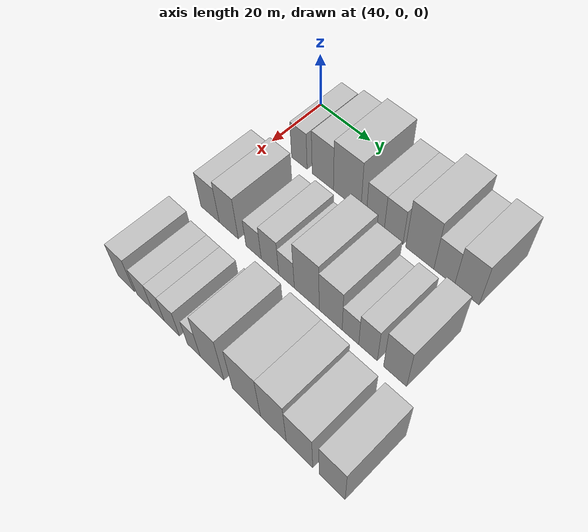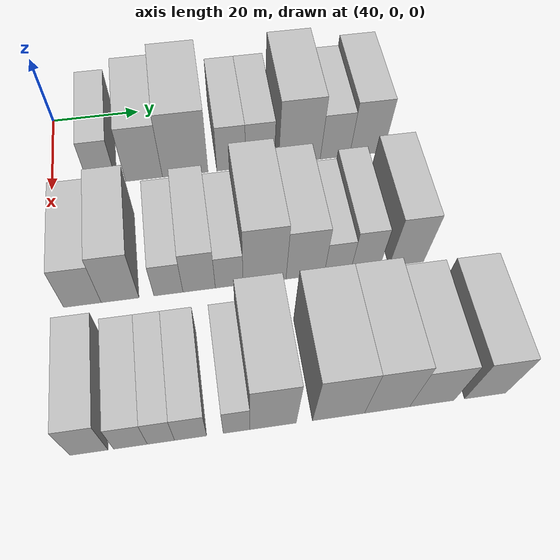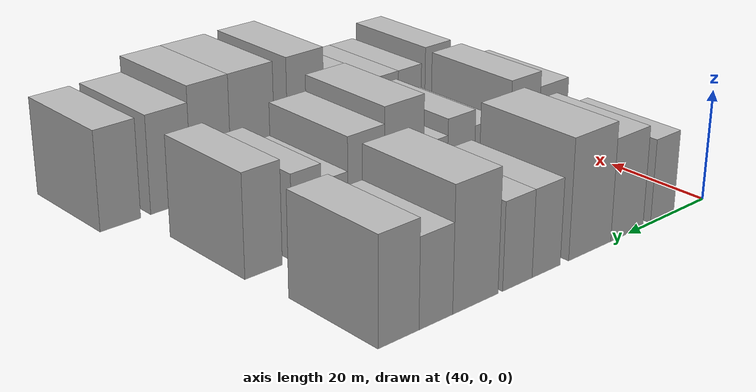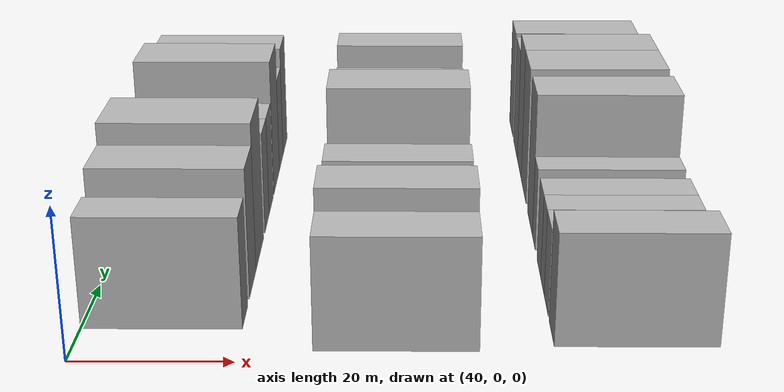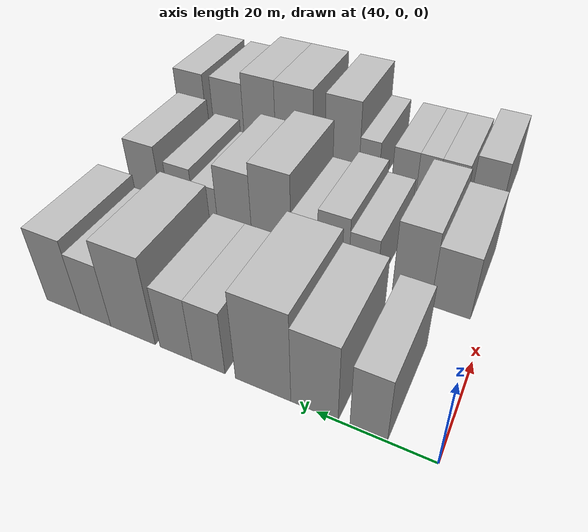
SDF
<sdf version="1.6">
 <world name="default">
  <model name="building_37">
   <static>1</static>
   <pose>50.0000 11.1801 0 0.000000 0.000000 0.000000</pose>
   <link name="link">
    <pose>0 0 7.50 0 0 0</pose>
    <collision name="collision"><geometry><box><size>20.0000 6.1879 15.0000</size></box></geometry></collision>
    <visual name="visual">
     <cast_shadows>0</cast_shadows>
     <geometry><box><size>20.0000 6.1879 15.0000</size></box></geometry>
     <material>
      <script>
       <uri>model://HANNAS_wall/materials/scripts</uri>
       <uri>model://HANNAS_wall/materials/textures</uri>
       <name>vrc/HANNAS_wall</name>
      </script>
     </material>
    </visual>
   </link>
  </model>
  <model name="building_38">
   <static>1</static>
   <pose>50.0000 20.3887 0 0.000000 0.000000 0.000000</pose>
   <link name="link">
    <pose>0 0 9.00 0 0 0</pose>
    <collision name="collision"><geometry><box><size>20.0000 8.2294 18.0000</size></box></geometry></collision>
    <visual name="visual">
     <cast_shadows>0</cast_shadows>
     <geometry><box><size>20.0000 8.2294 18.0000</size></box></geometry>
     <material>
      <script>
       <uri>model://HANNAS_wall/materials/scripts</uri>
       <uri>model://HANNAS_wall/materials/textures</uri>
       <name>vrc/HANNAS_wall</name>
      </script>
     </material>
    </visual>
   </link>
  </model>
  <model name="building_39">
   <static>1</static>
   <pose>50.0000 29.6329 0 0.000000 0.000000 0.000000</pose>
   <link name="link">
    <pose>0 0 10.50 0 0 0</pose>
    <collision name="collision"><geometry><box><size>20.0000 10.2591 21.0000</size></box></geometry></collision>
    <visual name="visual">
     <cast_shadows>0</cast_shadows>
     <geometry><box><size>20.0000 10.2591 21.0000</size></box></geometry>
     <material>
      <script>
       <uri>model://HANNAS_wall/materials/scripts</uri>
       <uri>model://HANNAS_wall/materials/textures</uri>
       <name>vrc/HANNAS_wall</name>
      </script>
     </material>
    </visual>
   </link>
  </model>
  <model name="building_40">
   <static>1</static>
   <pose>50.0000 40.0104 0 0.000000 0.000000 0.000000</pose>
   <link name="link">
    <pose>0 0 7.50 0 0 0</pose>
    <collision name="collision"><geometry><box><size>20.0000 6.4958 15.0000</size></box></geometry></collision>
    <visual name="visual">
     <cast_shadows>0</cast_shadows>
     <geometry><box><size>20.0000 6.4958 15.0000</size></box></geometry>
     <material>
      <script>
       <uri>model://HANNAS_wall/materials/scripts</uri>
       <uri>model://HANNAS_wall/materials/textures</uri>
       <name>vrc/HANNAS_wall</name>
      </script>
     </material>
    </visual>
   </link>
  </model>
  <model name="building_41">
   <static>1</static>
   <pose>50.0000 46.5417 0 0.000000 0.000000 0.000000</pose>
   <link name="link">
    <pose>0 0 7.50 0 0 0</pose>
    <collision name="collision"><geometry><box><size>20.0000 6.5669 15.0000</size></box></geometry></collision>
    <visual name="visual">
     <cast_shadows>0</cast_shadows>
     <geometry><box><size>20.0000 6.5669 15.0000</size></box></geometry>
     <material>
      <script>
       <uri>model://HANNAS_wall/materials/scripts</uri>
       <uri>model://HANNAS_wall/materials/textures</uri>
       <name>vrc/HANNAS_wall</name>
      </script>
     </material>
    </visual>
   </link>
  </model>
  <model name="building_42">
   <static>1</static>
   <pose>50.0000 55.6365 0 0.000000 0.000000 0.000000</pose>
   <link name="link">
    <pose>0 0 10.50 0 0 0</pose>
    <collision name="collision"><geometry><box><size>20.0000 9.6227 21.0000</size></box></geometry></collision>
    <visual name="visual">
     <cast_shadows>0</cast_shadows>
     <geometry><box><size>20.0000 9.6227 21.0000</size></box></geometry>
     <material>
      <script>
       <uri>model://HANNAS_wall/materials/scripts</uri>
       <uri>model://HANNAS_wall/materials/textures</uri>
       <name>vrc/HANNAS_wall</name>
      </script>
     </material>
    </visual>
   </link>
  </model>
  <model name="building_43">
   <static>1</static>
   <pose>50.0000 63.8564 0 0.000000 0.000000 0.000000</pose>
   <link name="link">
    <pose>0 0 7.50 0 0 0</pose>
    <collision name="collision"><geometry><box><size>20.0000 6.8171 15.0000</size></box></geometry></collision>
    <visual name="visual">
     <cast_shadows>0</cast_shadows>
     <geometry><box><size>20.0000 6.8171 15.0000</size></box></geometry>
     <material>
      <script>
       <uri>model://HANNAS_wall/materials/scripts</uri>
       <uri>model://HANNAS_wall/materials/textures</uri>
       <name>vrc/HANNAS_wall</name>
      </script>
     </material>
    </visual>
   </link>
  </model>
  <model name="building_44">
   <static>1</static>
   <pose>50.0000 71.2463 0 0.000000 0.000000 0.000000</pose>
   <link name="link">
    <pose>0 0 9.00 0 0 0</pose>
    <collision name="collision"><geometry><box><size>20.0000 7.9626 18.0000</size></box></geometry></collision>
    <visual name="visual">
     <cast_shadows>0</cast_shadows>
     <geometry><box><size>20.0000 7.9626 18.0000</size></box></geometry>
     <material>
      <script>
       <uri>model://HANNAS_wall/materials/scripts</uri>
       <uri>model://HANNAS_wall/materials/textures</uri>
       <name>vrc/HANNAS_wall</name>
      </script>
     </material>
    </visual>
   </link>
  </model>
  <model name="building_110">
   <static>1</static>
   <pose>79.0000 6.4554 0 0.000000 0.000000 0.000000</pose>
   <link name="link">
    <pose>0 0 7.50 0 0 0</pose>
    <collision name="collision"><geometry><box><size>20.0000 7.4567 15.0000</size></box></geometry></collision>
    <visual name="visual">
     <cast_shadows>0</cast_shadows>
     <geometry><box><size>20.0000 7.4567 15.0000</size></box></geometry>
     <material>
      <script>
       <uri>model://HANNAS_wall/materials/scripts</uri>
       <uri>model://HANNAS_wall/materials/textures</uri>
       <name>vrc/HANNAS_wall</name>
      </script>
     </material>
    </visual>
   </link>
  </model>
  <model name="building_111">
   <static>1</static>
   <pose>79.0000 13.9519 0 0.000000 0.000000 0.000000</pose>
   <link name="link">
    <pose>0 0 9.00 0 0 0</pose>
    <collision name="collision"><geometry><box><size>20.0000 7.5363 18.0000</size></box></geometry></collision>
    <visual name="visual">
     <cast_shadows>0</cast_shadows>
     <geometry><box><size>20.0000 7.5363 18.0000</size></box></geometry>
     <material>
      <script>
       <uri>model://HANNAS_wall/materials/scripts</uri>
       <uri>model://HANNAS_wall/materials/textures</uri>
       <name>vrc/HANNAS_wall</name>
      </script>
     </material>
    </visual>
   </link>
  </model>
  <model name="building_112">
   <static>1</static>
   <pose>79.0000 23.6591 0 0.000000 0.000000 0.000000</pose>
   <link name="link">
    <pose>0 0 6.00 0 0 0</pose>
    <collision name="collision"><geometry><box><size>20.0000 5.8781 12.0000</size></box></geometry></collision>
    <visual name="visual">
     <cast_shadows>0</cast_shadows>
     <geometry><box><size>20.0000 5.8781 12.0000</size></box></geometry>
     <material>
      <script>
       <uri>model://HANNAS_wall/materials/scripts</uri>
       <uri>model://HANNAS_wall/materials/textures</uri>
       <name>vrc/HANNAS_wall</name>
      </script>
     </material>
    </visual>
   </link>
  </model>
  <model name="building_113">
   <static>1</static>
   <pose>79.0000 29.8793 0 0.000000 0.000000 0.000000</pose>
   <link name="link">
    <pose>0 0 7.50 0 0 0</pose>
    <collision name="collision"><geometry><box><size>20.0000 6.5624 15.0000</size></box></geometry></collision>
    <visual name="visual">
     <cast_shadows>0</cast_shadows>
     <geometry><box><size>20.0000 6.5624 15.0000</size></box></geometry>
     <material>
      <script>
       <uri>model://HANNAS_wall/materials/scripts</uri>
       <uri>model://HANNAS_wall/materials/textures</uri>
       <name>vrc/HANNAS_wall</name>
      </script>
     </material>
    </visual>
   </link>
  </model>
  <model name="building_114">
   <static>1</static>
   <pose>79.0000 35.9953 0 0.000000 0.000000 0.000000</pose>
   <link name="link">
    <pose>0 0 6.00 0 0 0</pose>
    <collision name="collision"><geometry><box><size>20.0000 5.6694 12.0000</size></box></geometry></collision>
    <visual name="visual">
     <cast_shadows>0</cast_shadows>
     <geometry><box><size>20.0000 5.6694 12.0000</size></box></geometry>
     <material>
      <script>
       <uri>model://HANNAS_wall/materials/scripts</uri>
       <uri>model://HANNAS_wall/materials/textures</uri>
       <name>vrc/HANNAS_wall</name>
      </script>
     </material>
    </visual>
   </link>
  </model>
  <model name="building_115">
   <static>1</static>
   <pose>79.0000 43.2478 0 0.000000 0.000000 0.000000</pose>
   <link name="link">
    <pose>0 0 10.50 0 0 0</pose>
    <collision name="collision"><geometry><box><size>20.0000 8.8356 21.0000</size></box></geometry></collision>
    <visual name="visual">
     <cast_shadows>0</cast_shadows>
     <geometry><box><size>20.0000 8.8356 21.0000</size></box></geometry>
     <material>
      <script>
       <uri>model://HANNAS_wall/materials/scripts</uri>
       <uri>model://HANNAS_wall/materials/textures</uri>
       <name>vrc/HANNAS_wall</name>
      </script>
     </material>
    </visual>
   </link>
  </model>
  <model name="building_116">
   <static>1</static>
   <pose>79.0000 51.6295 0 0.000000 0.000000 0.000000</pose>
   <link name="link">
    <pose>0 0 9.00 0 0 0</pose>
    <collision name="collision"><geometry><box><size>20.0000 7.9278 18.0000</size></box></geometry></collision>
    <visual name="visual">
     <cast_shadows>0</cast_shadows>
     <geometry><box><size>20.0000 7.9278 18.0000</size></box></geometry>
     <material>
      <script>
       <uri>model://HANNAS_wall/materials/scripts</uri>
       <uri>model://HANNAS_wall/materials/textures</uri>
       <name>vrc/HANNAS_wall</name>
      </script>
     </material>
    </visual>
   </link>
  </model>
  <model name="building_117">
   <static>1</static>
   <pose>79.0000 58.3722 0 0.000000 0.000000 0.000000</pose>
   <link name="link">
    <pose>0 0 6.00 0 0 0</pose>
    <collision name="collision"><geometry><box><size>20.0000 5.5577 12.0000</size></box></geometry></collision>
    <visual name="visual">
     <cast_shadows>0</cast_shadows>
     <geometry><box><size>20.0000 5.5577 12.0000</size></box></geometry>
     <material>
      <script>
       <uri>model://HANNAS_wall/materials/scripts</uri>
       <uri>model://HANNAS_wall/materials/textures</uri>
       <name>vrc/HANNAS_wall</name>
      </script>
     </material>
    </visual>
   </link>
  </model>
  <model name="building_118">
   <static>1</static>
   <pose>79.0000 64.1991 0 0.000000 0.000000 0.000000</pose>
   <link name="link">
    <pose>0 0 7.50 0 0 0</pose>
    <collision name="collision"><geometry><box><size>20.0000 6.0961 15.0000</size></box></geometry></collision>
    <visual name="visual">
     <cast_shadows>0</cast_shadows>
     <geometry><box><size>20.0000 6.0961 15.0000</size></box></geometry>
     <material>
      <script>
       <uri>model://HANNAS_wall/materials/scripts</uri>
       <uri>model://HANNAS_wall/materials/textures</uri>
       <name>vrc/HANNAS_wall</name>
      </script>
     </material>
    </visual>
   </link>
  </model>
  <model name="building_119">
   <static>1</static>
   <pose>79.0000 72.9275 0 0.000000 0.000000 0.000000</pose>
   <link name="link">
    <pose>0 0 9.00 0 0 0</pose>
    <collision name="collision"><geometry><box><size>20.0000 7.3608 18.0000</size></box></geometry></collision>
    <visual name="visual">
     <cast_shadows>0</cast_shadows>
     <geometry><box><size>20.0000 7.3608 18.0000</size></box></geometry>
     <material>
      <script>
       <uri>model://HANNAS_wall/materials/scripts</uri>
       <uri>model://HANNAS_wall/materials/textures</uri>
       <name>vrc/HANNAS_wall</name>
      </script>
     </material>
    </visual>
   </link>
  </model>
  <model name="building_188">
   <static>1</static>
   <pose>108.0000 7.3516 0 0.000000 0.000000 0.000000</pose>
   <link name="link">
    <pose>0 0 7.50 0 0 0</pose>
    <collision name="collision"><geometry><box><size>20.0000 6.7166 15.0000</size></box></geometry></collision>
    <visual name="visual">
     <cast_shadows>0</cast_shadows>
     <geometry><box><size>20.0000 6.7166 15.0000</size></box></geometry>
     <material>
      <script>
       <uri>model://HANNAS_wall/materials/scripts</uri>
       <uri>model://HANNAS_wall/materials/textures</uri>
       <name>vrc/HANNAS_wall</name>
      </script>
     </material>
    </visual>
   </link>
  </model>
  <model name="building_189">
   <static>1</static>
   <pose>108.0000 14.7060 0 0.000000 0.000000 0.000000</pose>
   <link name="link">
    <pose>0 0 6.00 0 0 0</pose>
    <collision name="collision"><geometry><box><size>20.0000 5.9921 12.0000</size></box></geometry></collision>
    <visual name="visual">
     <cast_shadows>0</cast_shadows>
     <geometry><box><size>20.0000 5.9921 12.0000</size></box></geometry>
     <material>
      <script>
       <uri>model://HANNAS_wall/materials/scripts</uri>
       <uri>model://HANNAS_wall/materials/textures</uri>
       <name>vrc/HANNAS_wall</name>
      </script>
     </material>
    </visual>
   </link>
  </model>
  <model name="building_190">
   <static>1</static>
   <pose>108.0000 20.1368 0 0.000000 0.000000 0.000000</pose>
   <link name="link">
    <pose>0 0 6.00 0 0 0</pose>
    <collision name="collision"><geometry><box><size>20.0000 4.8696 12.0000</size></box></geometry></collision>
    <visual name="visual">
     <cast_shadows>0</cast_shadows>
     <geometry><box><size>20.0000 4.8696 12.0000</size></box></geometry>
     <material>
      <script>
       <uri>model://HANNAS_wall/materials/scripts</uri>
       <uri>model://HANNAS_wall/materials/textures</uri>
       <name>vrc/HANNAS_wall</name>
      </script>
     </material>
    </visual>
   </link>
  </model>
  <model name="building_191">
   <static>1</static>
   <pose>108.0000 25.4579 0 0.000000 0.000000 0.000000</pose>
   <link name="link">
    <pose>0 0 6.00 0 0 0</pose>
    <collision name="collision"><geometry><box><size>20.0000 5.7726 12.0000</size></box></geometry></collision>
    <visual name="visual">
     <cast_shadows>0</cast_shadows>
     <geometry><box><size>20.0000 5.7726 12.0000</size></box></geometry>
     <material>
      <script>
       <uri>model://HANNAS_wall/materials/scripts</uri>
       <uri>model://HANNAS_wall/materials/textures</uri>
       <name>vrc/HANNAS_wall</name>
      </script>
     </material>
    </visual>
   </link>
  </model>
  <model name="building_192">
   <static>1</static>
   <pose>108.0000 33.7710 0 0.000000 0.000000 0.000000</pose>
   <link name="link">
    <pose>0 0 6.00 0 0 0</pose>
    <collision name="collision"><geometry><box><size>20.0000 4.8534 12.0000</size></box></geometry></collision>
    <visual name="visual">
     <cast_shadows>0</cast_shadows>
     <geometry><box><size>20.0000 4.8534 12.0000</size></box></geometry>
     <material>
      <script>
       <uri>model://HANNAS_wall/materials/scripts</uri>
       <uri>model://HANNAS_wall/materials/textures</uri>
       <name>vrc/HANNAS_wall</name>
      </script>
     </material>
    </visual>
   </link>
  </model>
  <model name="building_193">
   <static>1</static>
   <pose>108.0000 40.4396 0 0.000000 0.000000 0.000000</pose>
   <link name="link">
    <pose>0 0 10.50 0 0 0</pose>
    <collision name="collision"><geometry><box><size>20.0000 8.4839 21.0000</size></box></geometry></collision>
    <visual name="visual">
     <cast_shadows>0</cast_shadows>
     <geometry><box><size>20.0000 8.4839 21.0000</size></box></geometry>
     <material>
      <script>
       <uri>model://HANNAS_wall/materials/scripts</uri>
       <uri>model://HANNAS_wall/materials/textures</uri>
       <name>vrc/HANNAS_wall</name>
      </script>
     </material>
    </visual>
   </link>
  </model>
  <model name="building_194">
   <static>1</static>
   <pose>108.0000 52.5174 0 0.000000 0.000000 0.000000</pose>
   <link name="link">
    <pose>0 0 10.50 0 0 0</pose>
    <collision name="collision"><geometry><box><size>20.0000 9.6716 21.0000</size></box></geometry></collision>
    <visual name="visual">
     <cast_shadows>0</cast_shadows>
     <geometry><box><size>20.0000 9.6716 21.0000</size></box></geometry>
     <material>
      <script>
       <uri>model://HANNAS_wall/materials/scripts</uri>
       <uri>model://HANNAS_wall/materials/textures</uri>
       <name>vrc/HANNAS_wall</name>
      </script>
     </material>
    </visual>
   </link>
  </model>
  <model name="building_195">
   <static>1</static>
   <pose>108.0000 61.6092 0 0.000000 0.000000 0.000000</pose>
   <link name="link">
    <pose>0 0 10.50 0 0 0</pose>
    <collision name="collision"><geometry><box><size>20.0000 8.5120 21.0000</size></box></geometry></collision>
    <visual name="visual">
     <cast_shadows>0</cast_shadows>
     <geometry><box><size>20.0000 8.5120 21.0000</size></box></geometry>
     <material>
      <script>
       <uri>model://HANNAS_wall/materials/scripts</uri>
       <uri>model://HANNAS_wall/materials/textures</uri>
       <name>vrc/HANNAS_wall</name>
      </script>
     </material>
    </visual>
   </link>
  </model>
  <model name="building_196">
   <static>1</static>
   <pose>108.0000 70.0912 0 0.000000 0.000000 0.000000</pose>
   <link name="link">
    <pose>0 0 9.00 0 0 0</pose>
    <collision name="collision"><geometry><box><size>20.0000 8.4521 18.0000</size></box></geometry></collision>
    <visual name="visual">
     <cast_shadows>0</cast_shadows>
     <geometry><box><size>20.0000 8.4521 18.0000</size></box></geometry>
     <material>
      <script>
       <uri>model://HANNAS_wall/materials/scripts</uri>
       <uri>model://HANNAS_wall/materials/textures</uri>
       <name>vrc/HANNAS_wall</name>
      </script>
     </material>
    </visual>
   </link>
  </model>
  <model name="building_197">
   <static>1</static>
   <pose>108.0000 80.2825 0 0.000000 0.000000 0.000000</pose>
   <link name="link">
    <pose>0 0 9.00 0 0 0</pose>
    <collision name="collision"><geometry><box><size>20.0000 7.9305 18.0000</size></box></geometry></collision>
    <visual name="visual">
     <cast_shadows>0</cast_shadows>
     <geometry><box><size>20.0000 7.9305 18.0000</size></box></geometry>
     <material>
      <script>
       <uri>model://HANNAS_wall/materials/scripts</uri>
       <uri>model://HANNAS_wall/materials/textures</uri>
       <name>vrc/HANNAS_wall</name>
      </script>
     </material>
    </visual>
   </link>
  </model>
 </world>
</sdf>
